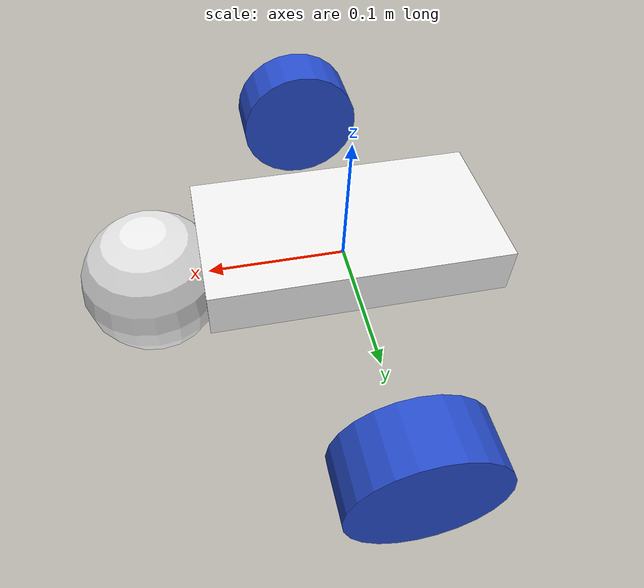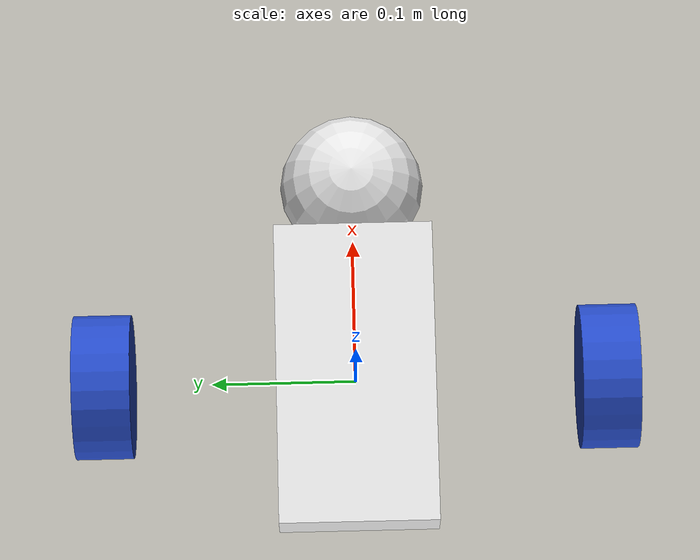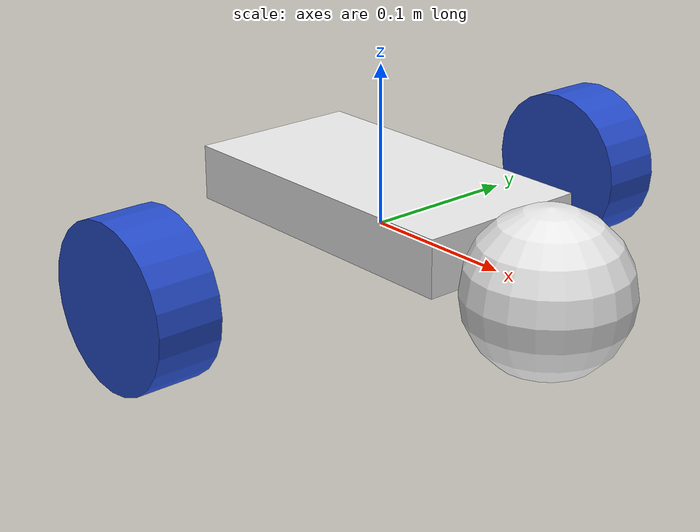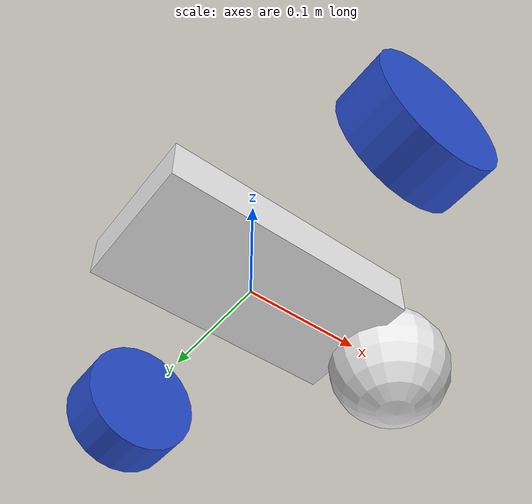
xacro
<?xml version="1.0" ?>
<robot xmlns:xacro="http://ros.org/wiki/xacro">

    <xacro:include filename="inertial_macros.xacro"/>

    <!-- Robot's base properties -->
    <xacro:property name="base_length" value="0.21"/>
    <xacro:property name="base_width" value="0.11"/>
    <xacro:property name="base_height" value="0.035"/>

    <!-- Robot's wheel properties -->
    <xacro:property name="wheel_radius" value="0.05"/>
    <xacro:property name="wheel_length" value="0.04"/>
    <xacro:property name="wheel_separation" value="0.35"/>

    <!-- Robot's caster wheel properties -->
    <xacro:property name="caster_wheel_radius" value="0.05"/>
    <xacro:property name="caster_wheel_mass" value="0.1"/>
    <!-- 🔧 修改点 1: 把万向轮往前移，避免和车身碰撞 (0.15 -> 0.24) -->
    <xacro:property name="caster_wheel_offset_x" value="0.24"/>

    <!-- Base Link -->
    <link name="base_link">
    </link>

    <!-- Chassis Link -->
    <joint name="chassis_joint" type="fixed">
        <parent link="base_link"/>
        <child link="chassis"/>
        <origin xyz="-0.1 0 0"/>
    </joint>

    <link name="chassis">
        <visual>
            <origin xyz="0.1 0 0.0175"/>
            <geometry>
                <box size="${base_length} ${base_width} ${base_height}"/>
            </geometry>
            <material name="white"/>
        </visual>
        <collision>
            <origin xyz="0.1 0 0.0175"/>
            <geometry>
                <box size="${base_length} ${base_width} ${base_height}"/>
            </geometry>
        </collision>
        <xacro:inertial_box mass="0.5" x="${base_length}" y="${base_width}" z="${base_height}">
            <origin xyz="0.1 0 0.0175" rpy="0 0 0"/>
        </xacro:inertial_box>
    </link>

    <!-- 🔧 修改点 2: 给车身添加 Gazebo 材质 -->
    <gazebo reference="chassis">
        <material>Gazebo/White</material>
    </gazebo>

    <!-- Left Wheel -->
    <joint name="left_wheel_joint" type="continuous">
        <parent link="base_link"/>
        <child link="left_wheel"/>
        <origin xyz="0 ${wheel_separation/2} 0" rpy="-${pi/2} 0 0"/>
        <axis xyz="0 0 1"/>
    </joint>

    <link name="left_wheel">
        <visual>
            <geometry>
                <cylinder radius="${wheel_radius}" length="${wheel_length}"/>
            </geometry>
            <material name="blue"/>
        </visual>
        <collision>
            <geometry>
                <cylinder radius="${wheel_radius}" length="${wheel_length}"/>
            </geometry>
        </collision>
        <xacro:inertial_cylinder mass="0.1" length="${wheel_length}" radius="${wheel_radius}">
            <origin xyz="0 0 0" rpy="0 0 0"/>
        </xacro:inertial_cylinder>
    </link>

    <gazebo reference="left_wheel">
        <material>Gazebo/Blue</material>
    </gazebo>

    <!-- Right Wheel -->
    <joint name="right_wheel_joint" type="continuous">
        <parent link="base_link"/>
        <child link="right_wheel"/>
        <origin xyz="0 -${wheel_separation/2} 0" rpy="${pi/2} 0 0"/>
        <axis xyz="0 0 -1"/>
    </joint>

    <link name="right_wheel">
        <visual>
            <geometry>
                <cylinder radius="${wheel_radius}" length="${wheel_length}"/>
            </geometry>
            <material name="blue"/>
        </visual>
        <collision>
            <geometry>
                <cylinder radius="${wheel_radius}" length="${wheel_length}"/>
            </geometry>
        </collision>
        <xacro:inertial_cylinder mass="0.1" length="${wheel_length}" radius="${wheel_radius}">
            <origin xyz="0 0 0" rpy="0 0 0"/>
        </xacro:inertial_cylinder>
    </link>

    <gazebo reference="right_wheel">
        <material>Gazebo/Blue</material>
    </gazebo>

    <!-- Caster Wheel -->
    <joint name="caster_wheel_joint" type="fixed">
        <parent link="chassis"/>
        <child link="caster_wheel"/>
        <origin xyz="${caster_wheel_offset_x} 0 0"/>
    </joint>

    <link name="caster_wheel">
        <visual>
            <geometry>
                <sphere radius="${caster_wheel_radius}"/>
            </geometry>
            <material name="white"/>
        </visual>
        <collision>
            <geometry>
                <sphere radius="${caster_wheel_radius}"/>
            </geometry>
        </collision>
        <xacro:inertial_sphere mass="${caster_wheel_mass}" radius="${caster_wheel_radius}">
            <origin xyz="0 0 0" rpy="0 0 0"/>
        </xacro:inertial_sphere>
    </link>

    <!-- 🔧 修改点 3: 关键！去除万向轮摩擦力，否则车会卡住或乱跳 -->
    <gazebo reference="caster_wheel">
        <material>Gazebo/White</material>
        <mu1 value="0.001"/>
        <mu2 value="0.001"/>
    </gazebo>

</robot>

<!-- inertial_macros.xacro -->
<robot xmlns:xacro="http://ros.org/wiki/xacro">

    <!-- 修正 1: 宏名称改为 inertial_box (配合 imu.xacro) -->
    <!-- 修正 2: 参数改为 x, y, z (配合 imu.xacro)       -->
    <xacro:macro name="inertial_box" params="mass x y z *origin">
        <inertial>
            <xacro:insert_block name="origin"/>
            <mass value="${mass}"/>
            <inertia ixx="${(mass/12) * (y*y + z*z)}" ixy="0.0" ixz="0.0"
                    iyy="${(mass/12) * (x*x + z*z)}" iyz="0.0"
                    izz="${(mass/12) * (x*x + y*y)}"/>
        </inertial>
    </xacro:macro>

    <!-- 修正: 宏名称改为 inertial_sphere                    -->
    <xacro:macro name="inertial_sphere" params="mass radius *origin">
        <inertial>
            <xacro:insert_block name="origin"/>
            <mass value="${mass}"/>
            <inertia ixx="${(2/5) * mass * (radius*radius)}" ixy="0.0" ixz="0.0"
                    iyy="${(2/5) * mass * (radius*radius)}" iyz="0.0"
                    izz="${(2/5) * mass * (radius*radius)}"/>
        </inertial>
    </xacro:macro>

    <!-- 修正: 宏名称改为 inertial_cylinder (配合 lidar.xacro) -->
    <xacro:macro name="inertial_cylinder" params="mass length radius *origin">
        <inertial>
            <xacro:insert_block name="origin"/>
            <mass value="${mass}" />
            <inertia ixx="${(1/12) * mass * (3*radius*radius + length*length)}" ixy="0.0" ixz="0.0"
                    iyy="${(1/12) * mass * (3*radius*radius + length*length)}" iyz="0.0"
                    izz="${(1/2) * mass * (radius*radius)}" />
        </inertial>
    </xacro:macro>

</robot>
